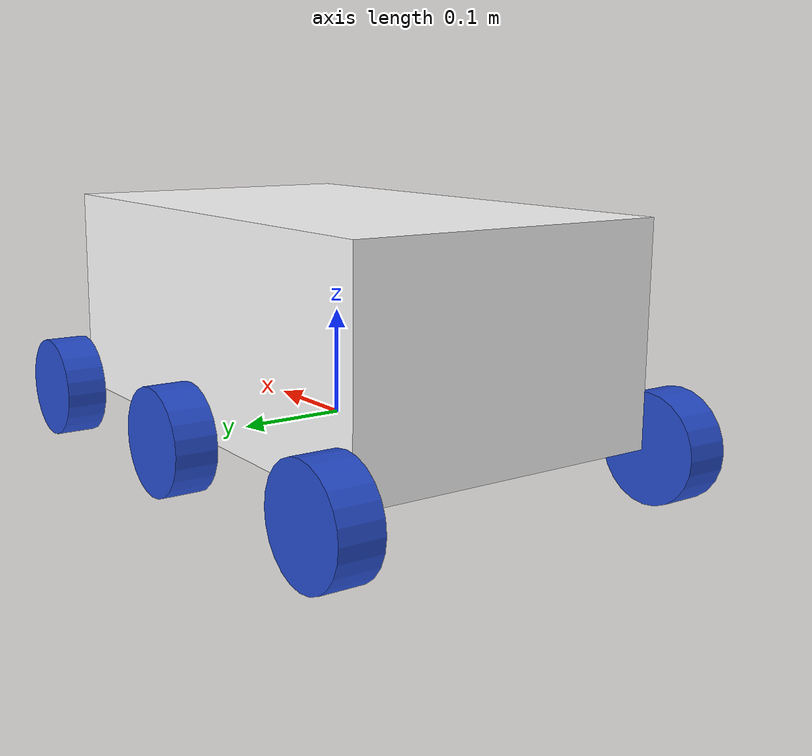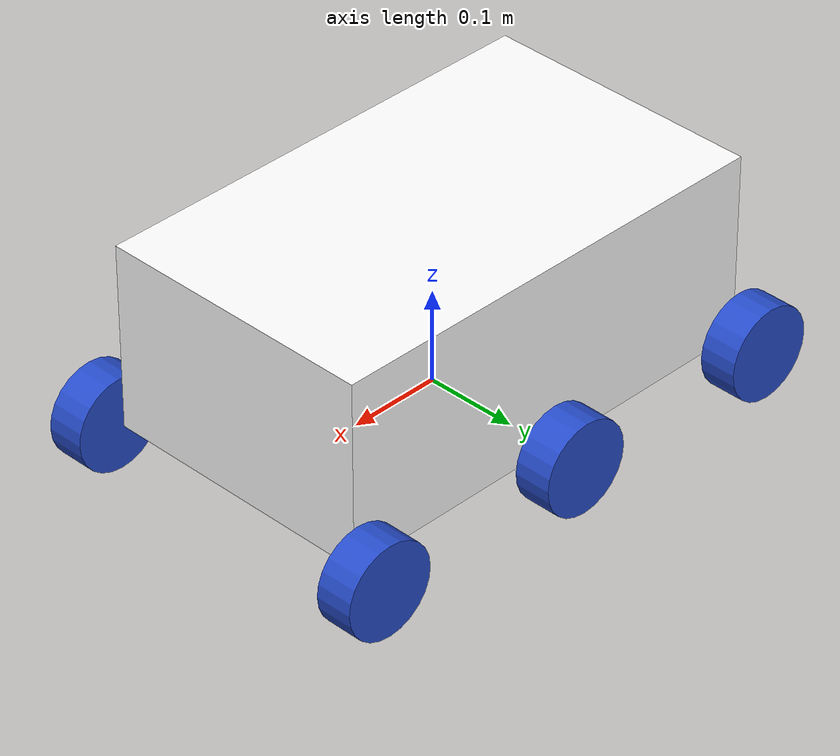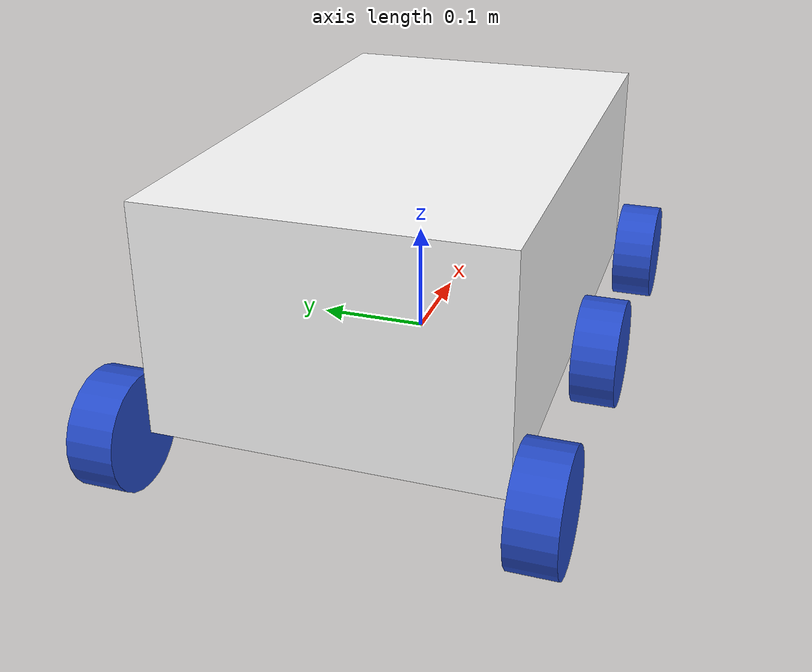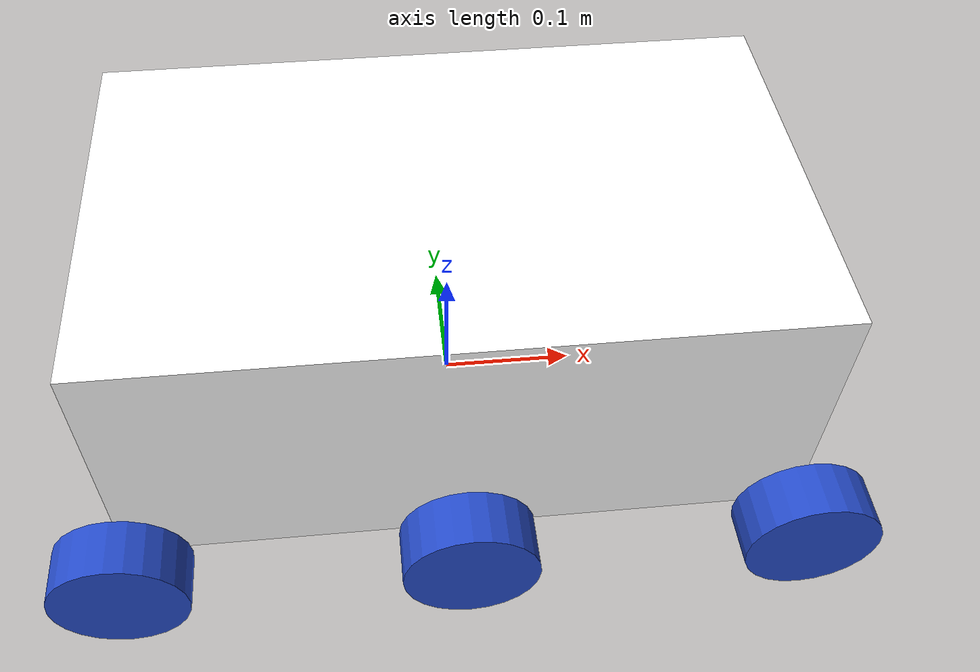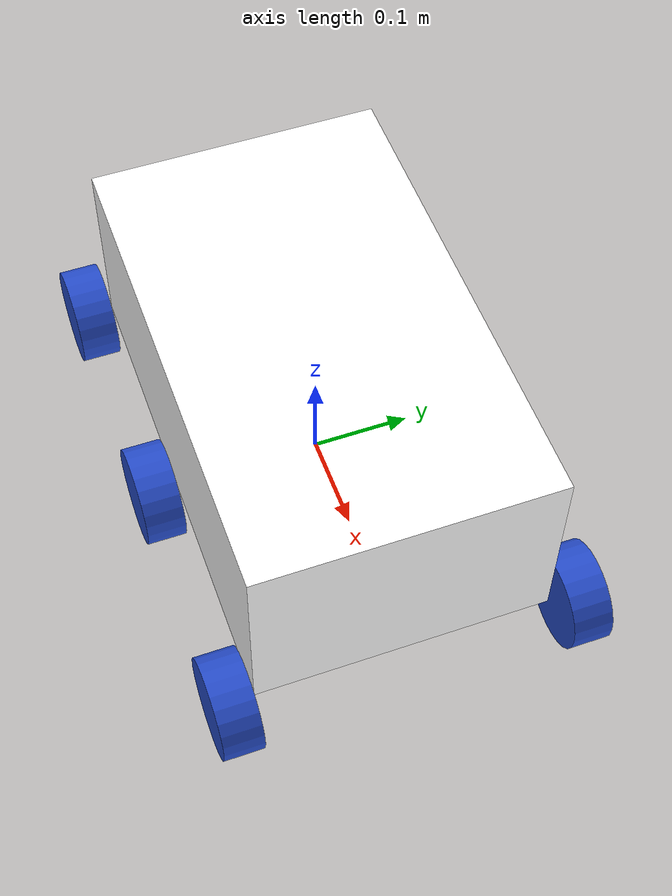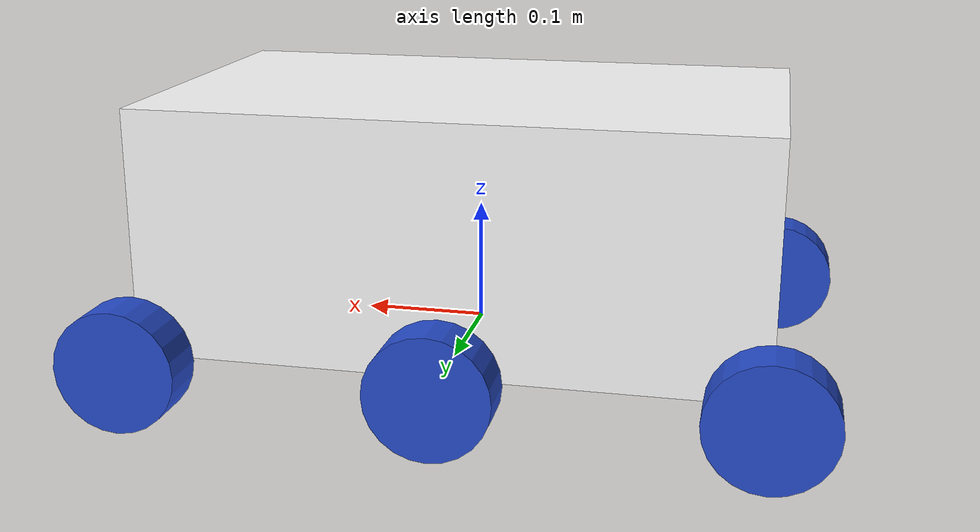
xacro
<?xml version="1.0"?>

<robot xmlns:xacro="http://ros.org/wiki/xacro" name="raksh">

    <xacro:include filename="$(find raksh_description)/urdf/material.xacro"/>
    <xacro:include filename="$(find raksh_description)/urdf/raksh_description.urdf.xacro"/>

    <link name="base_link"/>
    <joint name="chasis_joint" type="fixed">
        <origin xyz="-0.25 0 0" rpy="0 0 0"/>
        <parent link="base_link"/>
        <child link="chassis"/>
    </joint>

</robot>

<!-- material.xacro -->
<robot xmlns:xacro="http://ros.org/wiki/xacro" name="raksh">

    <material name="white">
        <color rgba="1 1 1 1"></color>
    </material>
</robot>

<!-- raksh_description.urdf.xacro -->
<robot xmlns:xacro="http://ros.org/wiki/xacro">

    <!-- CHASSIS LINK -->
    <link name="chassis">
        <visual>
            <origin xyz="0.25 0.0 0.1"/>
            <geometry>
                <box size="0.5 0.3 0.2"/>
            </geometry>
            <material name="white"/>
        </visual>
        <collision>
            <origin xyz="0.25 0.0 0.1"/>
            <geometry>
                <box size="0.5 0.3 0.2"/>
            </geometry>
        </collision>
    </link>

    <!-- LEFT WHEELS LINK -->

    <!-- Rear -->
    <joint name="left_wheel_rear_joint" type="continuous">
        <parent link="chassis"/>
        <child link="left_wheel_rear"/>
        <origin xyz="0.0 0.175 0.0" rpy="-${pi/2} 0.0 0.0"/>
        <axis xyz="0.0 0.0 1.0"/>
    </joint>

    <link name="left_wheel_rear">
        <visual>
            <geometry>
                <cylinder radius="0.05" length="0.04"/>
            </geometry>
            <material name="blue"/>
        </visual>
        <collision>
            <geometry>
                <cylinder radius="0.05" length="0.04"/>
            </geometry>
        </collision>
    </link>

    <!-- middle -->
    <joint name="left_wheel_middle_joint" type="continuous">
        <parent link="chassis"/>
        <child link="left_wheel_middle"/>
        <origin xyz="0.25 0.175 0.0" rpy="-${pi/2} 0.0 0.0"/>
        <axis xyz="0.0 0.0 1.0"/>
    </joint>

    <link name="left_wheel_middle">
        <visual>
            <geometry>
                <cylinder radius="0.05" length="0.04"/>
            </geometry>
            <material name="blue"/>
        </visual>
        <collision>
            <geometry>
                <cylinder radius="0.05" length="0.04"/>
            </geometry>
        </collision>
    </link>

    <!-- front -->
    <joint name="left_wheel_front_joint" type="continuous">
        <parent link="chassis"/>
        <child link="left_wheel_front"/>
        <origin xyz="0.5 0.175 0.0" rpy="-${pi/2} 0.0 0.0"/>
        <axis xyz="0.0 0.0 1.0"/>
    </joint>

    <link name="left_wheel_front">
        <visual>
            <geometry>
                <cylinder radius="0.05" length="0.04"/>
            </geometry>
            <material name="blue"/>
        </visual>
        <collision>
            <geometry>
                <cylinder radius="0.05" length="0.04"/>
            </geometry>
        </collision>
    </link>
    <!-- right WHEELS LINK -->

    <!-- Rear -->
    <joint name="right_wheel_rear_joint" type="continuous">
        <parent link="chassis"/>
        <child link="right_wheel_rear"/>
        <origin xyz="0.0 -0.175 0.0" rpy="${pi/2} 0.0 0.0"/>
        <axis xyz="0.0 0.0 -1.0"/>
    </joint>

    <link name="right_wheel_rear">
        <visual>
            <geometry>
                <cylinder radius="0.05" length="0.04"/>
            </geometry>
            <material name="blue"/>
        </visual>
        <collision>
            <geometry>
                <cylinder radius="0.05" length="0.04"/>
            </geometry>
        </collision>
    </link>

    <!-- middle -->
    <joint name="right_wheel_middle_joint" type="continuous">
        <parent link="chassis"/>
        <child link="right_wheel_middle"/>
        <origin xyz="0.25 -0.175 0.0" rpy="${pi/2} 0.0 0.0"/>
        <axis xyz="0.0 0.0 -1.0"/>
    </joint>

    <link name="right_wheel_middle">
        <visual>
            <geometry>
                <cylinder radius="0.05" length="0.04"/>
            </geometry>
            <material name="blue"/>
        </visual>
        <collision>
            <geometry>
                <cylinder radius="0.05" length="0.04"/>
            </geometry>
        </collision>
    </link>

    <!-- front -->
    <joint name="right_wheel_front_joint" type="continuous">
        <parent link="chassis"/>
        <child link="right_wheel_front"/>
        <origin xyz="0.5 -0.175 0.0" rpy="${pi/2} 0.0 0.0"/>
        <axis xyz="0.0 0.0 -1.0"/>
    </joint>

    <link name="right_wheel_front">
        <visual>
            <geometry>
                <cylinder radius="0.05" length="0.04"/>
            </geometry>
            <material name="blue"/>
        </visual>
        <collision>
            <geometry>
                <cylinder radius="0.05" length="0.04"/>
            </geometry>
        </collision>
    </link>
</robot>
